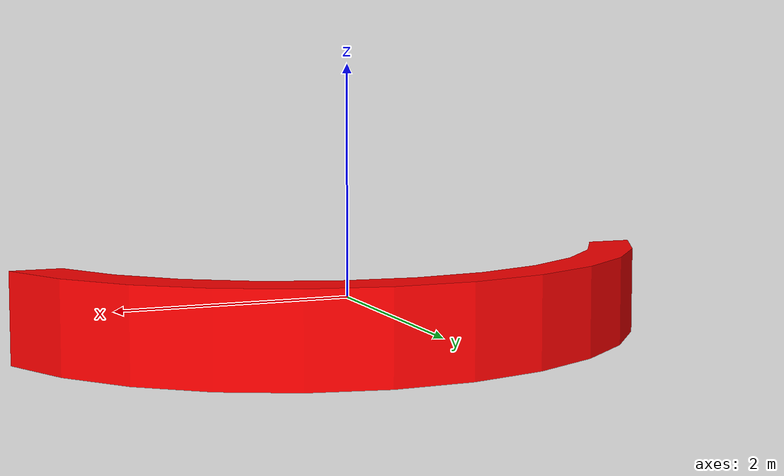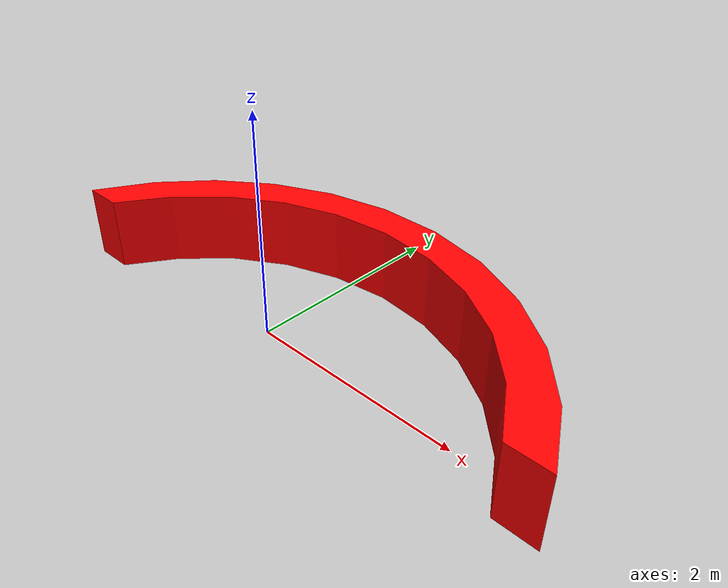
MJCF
<mujoco model="ctb_handle">
  <default>
    <default class="visual">
      <geom group="2" type="mesh" contype="0" conaffinity="0"/>
    </default>
    <default class="collision">
      <geom group="3" type="mesh"/>
    </default>
  </default>
  <asset>
    <material name="mtl_ctb_handle" specular="0.20000000000000004" shininess="1.0" rgba="1.00000000 0.00000000 0.00000000 1.0"/>
    <mesh file="ctb_handle.obj"/>
    <mesh file="ctb_handle_collision_0.obj"/>
    <mesh file="ctb_handle_collision_1.obj"/>
    <mesh file="ctb_handle_collision_2.obj"/>
    <mesh file="ctb_handle_collision_3.obj"/>
    <mesh file="ctb_handle_collision_4.obj"/>
    <mesh file="ctb_handle_collision_5.obj"/>
    <mesh file="ctb_handle_collision_6.obj"/>
    <mesh file="ctb_handle_collision_7.obj"/>
    <mesh file="ctb_handle_collision_8.obj"/>
    <mesh file="ctb_handle_collision_9.obj"/>
  </asset>
  <worldbody>
    <body name="ctb_handle">
      <geom material="mtl_ctb_handle" mesh="ctb_handle" class="visual"/>
      <geom mesh="ctb_handle_collision_0" rgba="0.39211429330043335 0.8614693448552048 0.040287894661490964 1" class="collision"/>
      <geom mesh="ctb_handle_collision_1" rgba="0.9284701843003145 0.6995365656575055 0.10266871307055236 1" class="collision"/>
      <geom mesh="ctb_handle_collision_2" rgba="0.2757469220845066 0.22676216109224467 0.037739317992731336 1" class="collision"/>
      <geom mesh="ctb_handle_collision_3" rgba="0.37589963120685044 0.5865516632553825 0.8002780746572414 1" class="collision"/>
      <geom mesh="ctb_handle_collision_4" rgba="0.9761650675548461 0.5212745525744173 0.6978841212811399 1" class="collision"/>
      <geom mesh="ctb_handle_collision_5" rgba="0.29666109220609405 0.480599450867808 0.6749495846144948 1" class="collision"/>
      <geom mesh="ctb_handle_collision_6" rgba="0.2568926582987495 0.4633595608785057 0.4975374007492914 1" class="collision"/>
      <geom mesh="ctb_handle_collision_7" rgba="0.22148987335181947 0.30055164929348166 0.963684599061878 1" class="collision"/>
      <geom mesh="ctb_handle_collision_8" rgba="0.374659718635155 0.7393421582610636 0.948165136076991 1" class="collision"/>
      <geom mesh="ctb_handle_collision_9" rgba="0.8033066912650815 0.3965686070742108 0.6256500283501865 1" class="collision"/>
    </body>
  </worldbody>
</mujoco>
